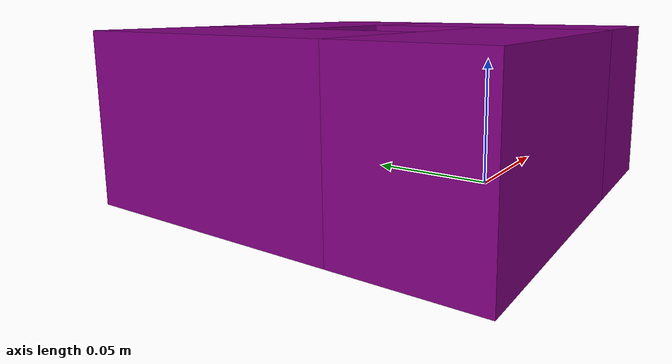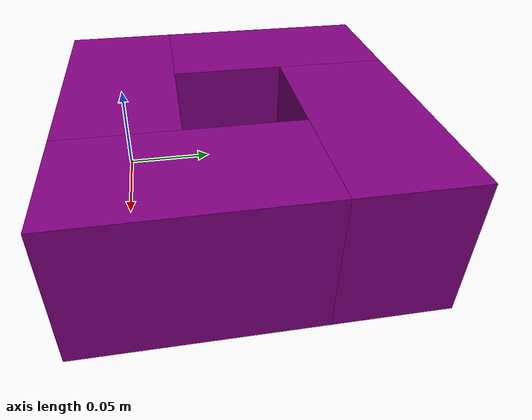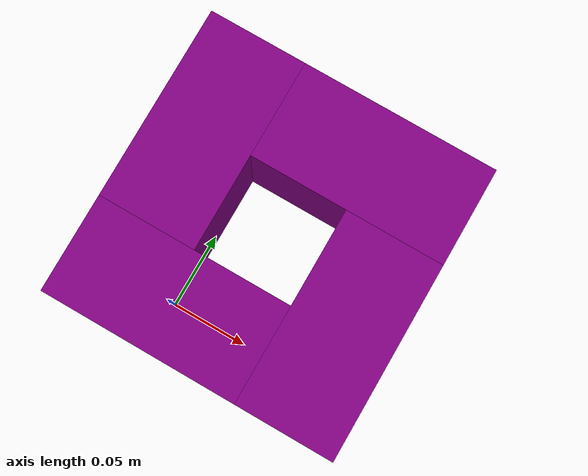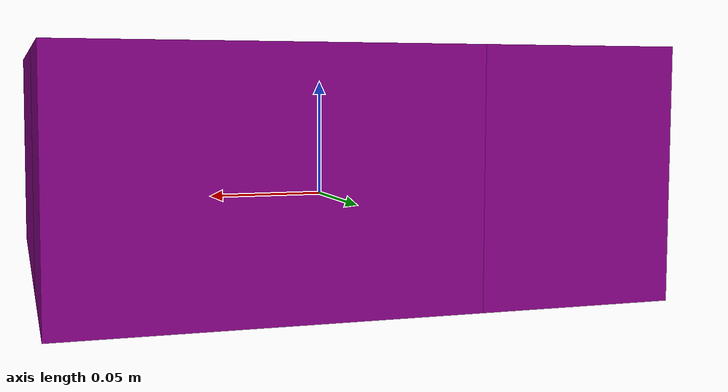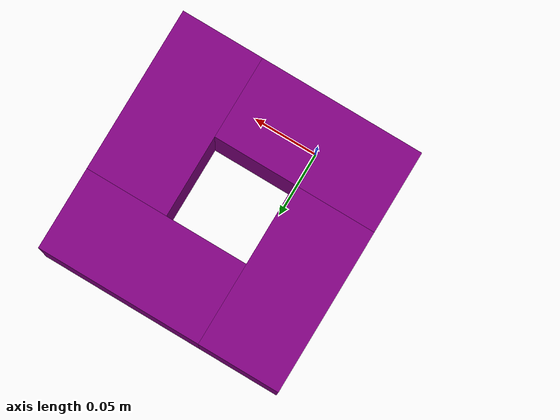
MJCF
<mujoco model="target_box">
    <worldbody>
        <body name="target_box" pos="0.0 0.0 0.0" quat="1 0 0 0">
        <geom name="target_box0" pos="0.0 0.0 0.02" size="0.064 0.032 0.04" rgba="0.5 0.0 0.5 1" type="box" friction="0.003 0.05 0.05" mass="0.01" />
        <geom name="target_box1" pos="-0.032 0.096 0.02" size="0.032 0.064 0.04" rgba="0.5 0.0 0.5 1" type="box" friction="0.003 0.05 0.05" mass="0.01" />
        <geom name="target_box2" pos="0.096 0.032  0.02" size="0.032 0.064 0.04" rgba="0.5 0.0 0.5 1" type="box" friction="0.003 0.05 0.05" mass="0.01" />
        <geom name="target_box3" pos="0.064 0.128 0.02" size="0.064 0.032 0.04" rgba="0.5 0.0 0.5 1" type="box" friction="0.003 0.05 0.05" mass="0.01" />
        </body>
    </worldbody>
</mujoco>
